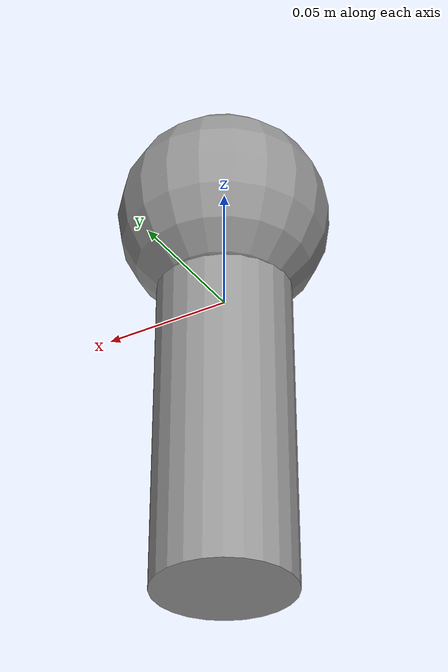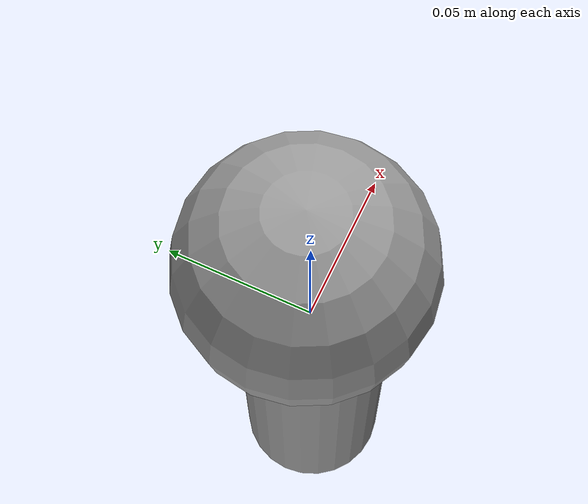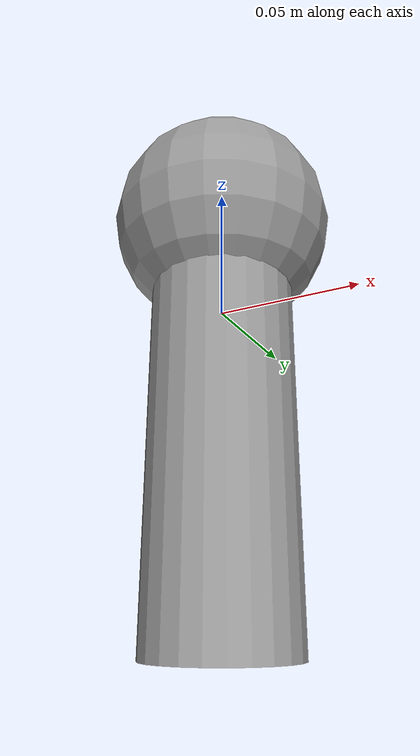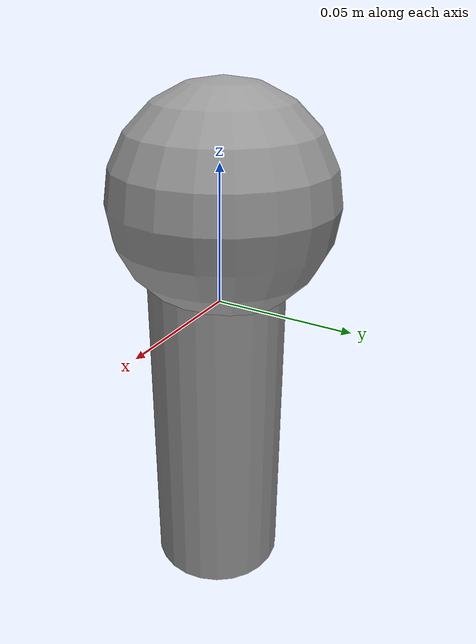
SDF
<?xml version='1.0'?>
<sdf version='1.7'>
  <model name='cylinder_ball'>
    <link name='cylinder'>
      <inertial>
        <mass>2.5</mass>
        <inertia>
          <ixx>0.00221667</ixx>
          <ixy>0</ixy>
          <ixz>0</ixz>
          <iyy>0.00221667</iyy>
          <iyz>0</iyz>
          <izz>0.0004</izz>
        </inertia>
        <pose>0 0 0 0 -0 0</pose>
      </inertial>
      <pose>0.00055 -0.00109 -0.037295 0 -0 0</pose>
      <gravity>1</gravity>
      <self_collide>0</self_collide>
      <kinematic>0</kinematic>
      <enable_wind>0</enable_wind>
      <visual name='visual'>
        <pose>0 0 0 0 -0 0</pose>
        <geometry>
          <cylinder>
            <radius>0.025</radius>
            <length>0.15</length>
          </cylinder>
        </geometry>
        <material>
          <lighting>1</lighting>
          <script>
            <uri>file://media/materials/scripts/gazebo.material</uri>
            <name>Gazebo/Grey</name>
          </script>
          <shader type='pixel'>
            <normal_map>__default__</normal_map>
          </shader>
          <ambient>0.3 0.3 0.3 1</ambient>
          <diffuse>0.7 0.7 0.7 1</diffuse>
          <specular>0.01 0.01 0.01 1</specular>
          <emissive>0 0 0 1</emissive>
        </material>
        <transparency>0</transparency>
        <cast_shadows>1</cast_shadows>
      </visual>
      <collision name='collision'>
        <laser_retro>0</laser_retro>
        <max_contacts>10</max_contacts>
        <pose>0 0 0 0 -0 0</pose>
        <geometry>
          <cylinder>
            <radius>0.025</radius>
            <length>0.15</length>
          </cylinder>
        </geometry>
        <surface>
          <friction>
            <ode>
              <mu>1</mu>
              <mu2>1</mu2>
              <fdir1>0 0 0</fdir1>
              <slip1>0</slip1>
              <slip2>0</slip2>
            </ode>
            <torsional>
              <coefficient>1</coefficient>
              <patch_radius>0</patch_radius>
              <surface_radius>0</surface_radius>
              <use_patch_radius>1</use_patch_radius>
              <ode>
                <slip>0</slip>
              </ode>
            </torsional>
          </friction>
          <bounce>
            <restitution_coefficient>0</restitution_coefficient>
            <threshold>1e+06</threshold>
          </bounce>
          <contact>
            <collide_without_contact>0</collide_without_contact>
            <collide_without_contact_bitmask>1</collide_without_contact_bitmask>
            <collide_bitmask>1</collide_bitmask>
            <ode>
              <soft_cfm>0</soft_cfm>
              <soft_erp>0.2</soft_erp>
              <kp>1e+13</kp>
              <kd>1</kd>
              <max_vel>0.01</max_vel>
              <min_depth>0</min_depth>
            </ode>
            <bullet>
              <split_impulse>1</split_impulse>
              <split_impulse_penetration_threshold>-0.01</split_impulse_penetration_threshold>
              <soft_cfm>0</soft_cfm>
              <soft_erp>0.2</soft_erp>
              <kp>1e+13</kp>
              <kd>1</kd>
            </bullet>
          </contact>
        </surface>
      </collision>
    </link>
    <link name='sphere'>
      <inertial>
        <mass>1</mass>
        <inertia>
          <ixx>0.1</ixx>
          <ixy>0</ixy>
          <ixz>0</ixz>
          <iyy>0.1</iyy>
          <iyz>0</iyz>
          <izz>0.1</izz>
        </inertia>
        <pose>0 0 0 0 -0 0</pose>
      </inertial>
      <pose>-0.000549 0.001088 0.037294 0 -0 0</pose>
      <gravity>1</gravity>
      <self_collide>0</self_collide>
      <kinematic>0</kinematic>
      <enable_wind>0</enable_wind>
      <visual name='visual'>
        <pose>0 0 0 0 -0 0</pose>
        <geometry>
          <sphere>
            <radius>0.04</radius>
          </sphere>
        </geometry>
        <material>
          <lighting>1</lighting>
          <script>
            <uri>file://media/materials/scripts/gazebo.material</uri>
            <name>Gazebo/Grey</name>
          </script>
          <shader type='pixel'>
            <normal_map>__default__</normal_map>
          </shader>
          <ambient>0.3 0.3 0.3 1</ambient>
          <diffuse>0.7 0.7 0.7 1</diffuse>
          <specular>0.01 0.01 0.01 1</specular>
          <emissive>0 0 0 1</emissive>
        </material>
        <transparency>0</transparency>
        <cast_shadows>1</cast_shadows>
      </visual>
      <collision name='collision'>
        <laser_retro>0</laser_retro>
        <max_contacts>10</max_contacts>
        <pose>0 0 0 0 -0 0</pose>
        <geometry>
          <sphere>
            <radius>0.04</radius>
          </sphere>
        </geometry>
        <surface>
          <friction>
            <ode>
              <mu>1</mu>
              <mu2>1</mu2>
              <fdir1>0 0 0</fdir1>
              <slip1>0</slip1>
              <slip2>0</slip2>
            </ode>
            <torsional>
              <coefficient>1</coefficient>
              <patch_radius>0</patch_radius>
              <surface_radius>0</surface_radius>
              <use_patch_radius>1</use_patch_radius>
              <ode>
                <slip>0</slip>
              </ode>
            </torsional>
          </friction>
          <bounce>
            <restitution_coefficient>0</restitution_coefficient>
            <threshold>1e+06</threshold>
          </bounce>
          <contact>
            <collide_without_contact>0</collide_without_contact>
            <collide_without_contact_bitmask>1</collide_without_contact_bitmask>
            <collide_bitmask>1</collide_bitmask>
            <ode>
              <soft_cfm>0</soft_cfm>
              <soft_erp>0.2</soft_erp>
              <kp>1e+13</kp>
              <kd>1</kd>
              <max_vel>0.01</max_vel>
              <min_depth>0</min_depth>
            </ode>
            <bullet>
              <split_impulse>1</split_impulse>
              <split_impulse_penetration_threshold>-0.01</split_impulse_penetration_threshold>
              <soft_cfm>0</soft_cfm>
              <soft_erp>0.2</soft_erp>
              <kp>1e+13</kp>
              <kd>1</kd>
            </bullet>
          </contact>
        </surface>
      </collision>
    </link>
    <static>0</static>
    <allow_auto_disable>1</allow_auto_disable>

     <joint name="joint" type="fixed">
      <parent>cylinder</parent>
      <child>sphere</child>
    </joint>

  </model>
</sdf>
